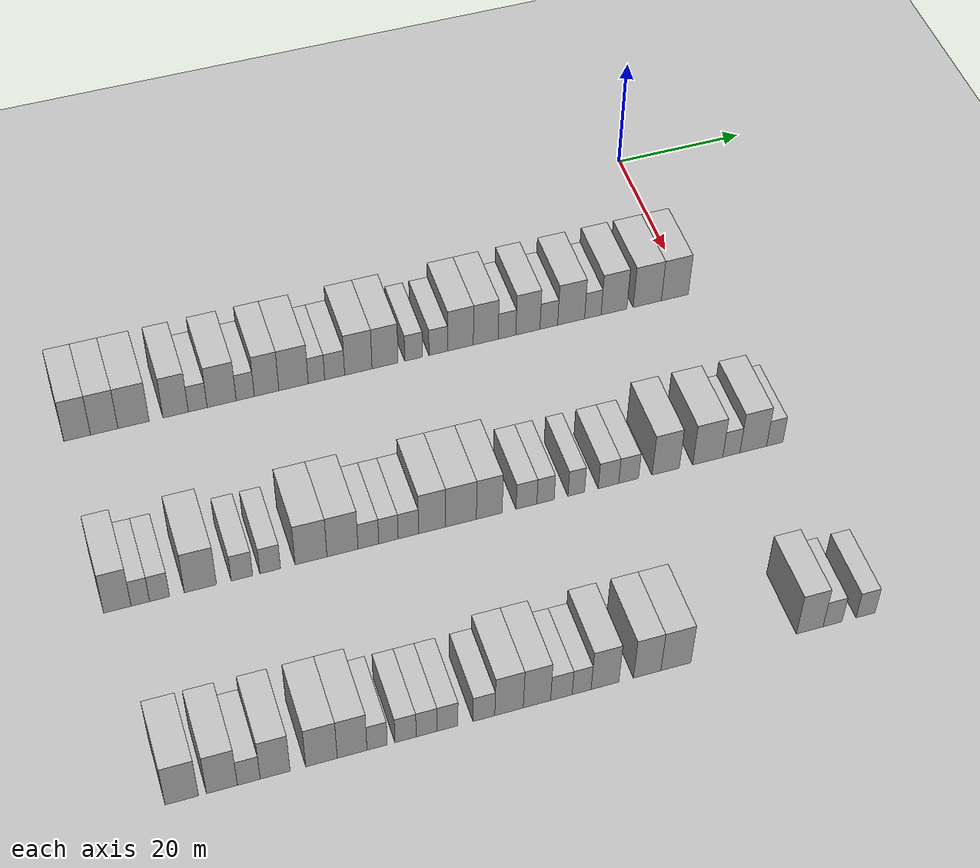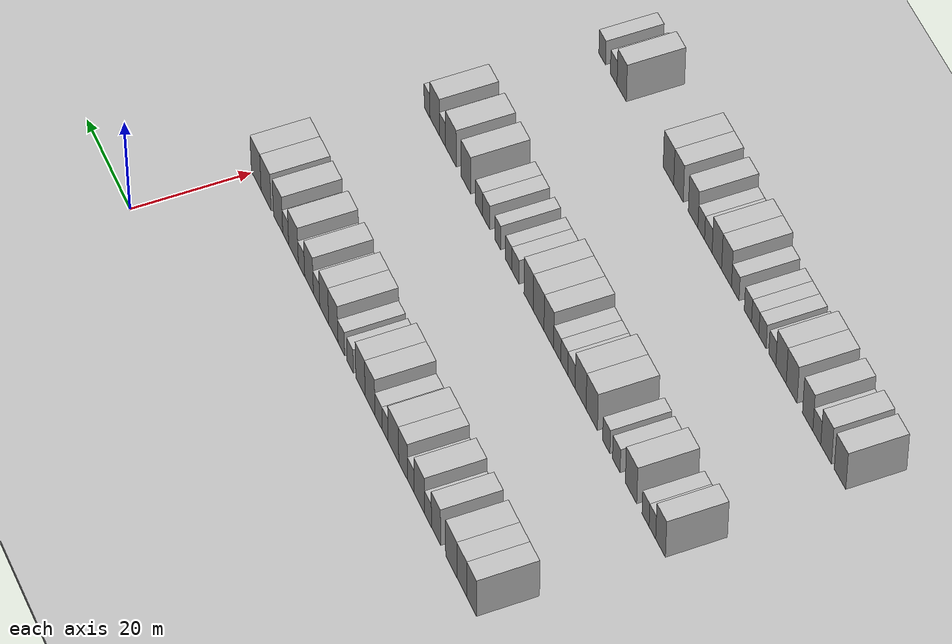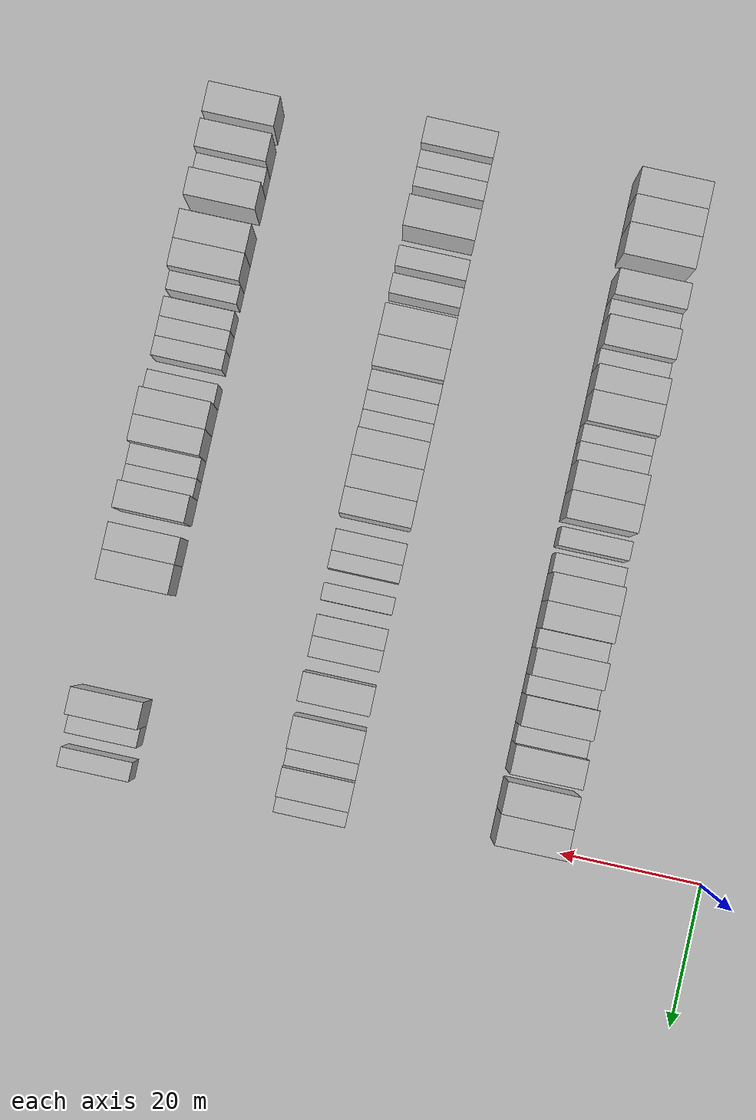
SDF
<sdf version="1.6">
 <world name="default">
  <include><name>ground_plane_1</name><uri>model://HANNAS_ground_plane</uri></include>
  <include>
   <name>ground_plane_2</name>
   <uri>model://HANNAS_ground_plane</uri>
   <pose>100 0 0  0 0 0</pose>
  </include>
  <model name="building_49">
   <static>1</static>
   <pose>25.0000 -92.1258 0 0.000000 0.000000 0.000000</pose>
   <link name="link">
    <pose>0 0 4.50 0 0 0</pose>
    <collision name="collision"><geometry><box><size>10.0000 3.7938 9.0000</size></box></geometry></collision>
    <visual name="visual">
     <cast_shadows>0</cast_shadows>
     <geometry><box><size>10.0000 3.7938 9.0000</size></box></geometry>
     <material>
      <script>
       <uri>model://HANNAS_wall/materials/scripts</uri>
       <uri>model://HANNAS_wall/materials/textures</uri>
       <name>vrc/HANNAS_wall</name>
      </script>
     </material>
    </visual>
   </link>
  </model>
  <model name="building_50">
   <static>1</static>
   <pose>25.0000 -88.2770 0 0.000000 0.000000 0.000000</pose>
   <link name="link">
    <pose>0 0 4.50 0 0 0</pose>
    <collision name="collision"><geometry><box><size>10.0000 3.9038 9.0000</size></box></geometry></collision>
    <visual name="visual">
     <cast_shadows>0</cast_shadows>
     <geometry><box><size>10.0000 3.9038 9.0000</size></box></geometry>
     <material>
      <script>
       <uri>model://HANNAS_wall/materials/scripts</uri>
       <uri>model://HANNAS_wall/materials/textures</uri>
       <name>vrc/HANNAS_wall</name>
      </script>
     </material>
    </visual>
   </link>
  </model>
  <model name="building_51">
   <static>1</static>
   <pose>25.0000 -84.0835 0 0.000000 0.000000 0.000000</pose>
   <link name="link">
    <pose>0 0 4.50 0 0 0</pose>
    <collision name="collision"><geometry><box><size>10.0000 4.4831 9.0000</size></box></geometry></collision>
    <visual name="visual">
     <cast_shadows>0</cast_shadows>
     <geometry><box><size>10.0000 4.4831 9.0000</size></box></geometry>
     <material>
      <script>
       <uri>model://HANNAS_wall/materials/scripts</uri>
       <uri>model://HANNAS_wall/materials/textures</uri>
       <name>vrc/HANNAS_wall</name>
      </script>
     </material>
    </visual>
   </link>
  </model>
  <model name="building_52">
   <static>1</static>
   <pose>25.0000 -78.0094 0 0.000000 0.000000 0.000000</pose>
   <link name="link">
    <pose>0 0 4.50 0 0 0</pose>
    <collision name="collision"><geometry><box><size>10.0000 3.6652 9.0000</size></box></geometry></collision>
    <visual name="visual">
     <cast_shadows>0</cast_shadows>
     <geometry><box><size>10.0000 3.6652 9.0000</size></box></geometry>
     <material>
      <script>
       <uri>model://HANNAS_wall/materials/scripts</uri>
       <uri>model://HANNAS_wall/materials/textures</uri>
       <name>vrc/HANNAS_wall</name>
      </script>
     </material>
    </visual>
   </link>
  </model>
  <model name="building_53">
   <static>1</static>
   <pose>25.0000 -74.8113 0 0.000000 0.000000 0.000000</pose>
   <link name="link">
    <pose>0 0 3.00 0 0 0</pose>
    <collision name="collision"><geometry><box><size>10.0000 2.7310 6.0000</size></box></geometry></collision>
    <visual name="visual">
     <cast_shadows>0</cast_shadows>
     <geometry><box><size>10.0000 2.7310 6.0000</size></box></geometry>
     <material>
      <script>
       <uri>model://HANNAS_wall/materials/scripts</uri>
       <uri>model://HANNAS_wall/materials/textures</uri>
       <name>vrc/HANNAS_wall</name>
      </script>
     </material>
    </visual>
   </link>
  </model>
  <model name="building_54">
   <static>1</static>
   <pose>25.0000 -71.3241 0 0.000000 0.000000 0.000000</pose>
   <link name="link">
    <pose>0 0 4.50 0 0 0</pose>
    <collision name="collision"><geometry><box><size>10.0000 4.2434 9.0000</size></box></geometry></collision>
    <visual name="visual">
     <cast_shadows>0</cast_shadows>
     <geometry><box><size>10.0000 4.2434 9.0000</size></box></geometry>
     <material>
      <script>
       <uri>model://HANNAS_wall/materials/scripts</uri>
       <uri>model://HANNAS_wall/materials/textures</uri>
       <name>vrc/HANNAS_wall</name>
      </script>
     </material>
    </visual>
   </link>
  </model>
  <model name="building_55">
   <static>1</static>
   <pose>25.0000 -67.8779 0 0.000000 0.000000 0.000000</pose>
   <link name="link">
    <pose>0 0 3.00 0 0 0</pose>
    <collision name="collision"><geometry><box><size>10.0000 2.6489 6.0000</size></box></geometry></collision>
    <visual name="visual">
     <cast_shadows>0</cast_shadows>
     <geometry><box><size>10.0000 2.6489 6.0000</size></box></geometry>
     <material>
      <script>
       <uri>model://HANNAS_wall/materials/scripts</uri>
       <uri>model://HANNAS_wall/materials/textures</uri>
       <name>vrc/HANNAS_wall</name>
      </script>
     </material>
    </visual>
   </link>
  </model>
  <model name="building_56">
   <static>1</static>
   <pose>25.0000 -64.7473 0 0.000000 0.000000 0.000000</pose>
   <link name="link">
    <pose>0 0 4.50 0 0 0</pose>
    <collision name="collision"><geometry><box><size>10.0000 3.6124 9.0000</size></box></geometry></collision>
    <visual name="visual">
     <cast_shadows>0</cast_shadows>
     <geometry><box><size>10.0000 3.6124 9.0000</size></box></geometry>
     <material>
      <script>
       <uri>model://HANNAS_wall/materials/scripts</uri>
       <uri>model://HANNAS_wall/materials/textures</uri>
       <name>vrc/HANNAS_wall</name>
      </script>
     </material>
    </visual>
   </link>
  </model>
  <model name="building_57">
   <static>1</static>
   <pose>25.0000 -60.7723 0 0.000000 0.000000 0.000000</pose>
   <link name="link">
    <pose>0 0 4.50 0 0 0</pose>
    <collision name="collision"><geometry><box><size>10.0000 4.3376 9.0000</size></box></geometry></collision>
    <visual name="visual">
     <cast_shadows>0</cast_shadows>
     <geometry><box><size>10.0000 4.3376 9.0000</size></box></geometry>
     <material>
      <script>
       <uri>model://HANNAS_wall/materials/scripts</uri>
       <uri>model://HANNAS_wall/materials/textures</uri>
       <name>vrc/HANNAS_wall</name>
      </script>
     </material>
    </visual>
   </link>
  </model>
  <model name="building_58">
   <static>1</static>
   <pose>25.0000 -57.3871 0 0.000000 0.000000 0.000000</pose>
   <link name="link">
    <pose>0 0 3.00 0 0 0</pose>
    <collision name="collision"><geometry><box><size>10.0000 2.4330 6.0000</size></box></geometry></collision>
    <visual name="visual">
     <cast_shadows>0</cast_shadows>
     <geometry><box><size>10.0000 2.4330 6.0000</size></box></geometry>
     <material>
      <script>
       <uri>model://HANNAS_wall/materials/scripts</uri>
       <uri>model://HANNAS_wall/materials/textures</uri>
       <name>vrc/HANNAS_wall</name>
      </script>
     </material>
    </visual>
   </link>
  </model>
  <model name="building_59">
   <static>1</static>
   <pose>25.0000 -54.6820 0 0.000000 0.000000 0.000000</pose>
   <link name="link">
    <pose>0 0 3.00 0 0 0</pose>
    <collision name="collision"><geometry><box><size>10.0000 2.9771 6.0000</size></box></geometry></collision>
    <visual name="visual">
     <cast_shadows>0</cast_shadows>
     <geometry><box><size>10.0000 2.9771 6.0000</size></box></geometry>
     <material>
      <script>
       <uri>model://HANNAS_wall/materials/scripts</uri>
       <uri>model://HANNAS_wall/materials/textures</uri>
       <name>vrc/HANNAS_wall</name>
      </script>
     </material>
    </visual>
   </link>
  </model>
  <model name="building_60">
   <static>1</static>
   <pose>25.0000 -51.1401 0 0.000000 0.000000 0.000000</pose>
   <link name="link">
    <pose>0 0 4.50 0 0 0</pose>
    <collision name="collision"><geometry><box><size>10.0000 4.1068 9.0000</size></box></geometry></collision>
    <visual name="visual">
     <cast_shadows>0</cast_shadows>
     <geometry><box><size>10.0000 4.1068 9.0000</size></box></geometry>
     <material>
      <script>
       <uri>model://HANNAS_wall/materials/scripts</uri>
       <uri>model://HANNAS_wall/materials/textures</uri>
       <name>vrc/HANNAS_wall</name>
      </script>
     </material>
    </visual>
   </link>
  </model>
  <model name="building_61">
   <static>1</static>
   <pose>25.0000 -47.1338 0 0.000000 0.000000 0.000000</pose>
   <link name="link">
    <pose>0 0 4.50 0 0 0</pose>
    <collision name="collision"><geometry><box><size>10.0000 3.9057 9.0000</size></box></geometry></collision>
    <visual name="visual">
     <cast_shadows>0</cast_shadows>
     <geometry><box><size>10.0000 3.9057 9.0000</size></box></geometry>
     <material>
      <script>
       <uri>model://HANNAS_wall/materials/scripts</uri>
       <uri>model://HANNAS_wall/materials/textures</uri>
       <name>vrc/HANNAS_wall</name>
      </script>
     </material>
    </visual>
   </link>
  </model>
  <model name="building_62">
   <static>1</static>
   <pose>25.0000 -42.8473 0 0.000000 0.000000 0.000000</pose>
   <link name="link">
    <pose>0 0 3.00 0 0 0</pose>
    <collision name="collision"><geometry><box><size>10.0000 2.6674 6.0000</size></box></geometry></collision>
    <visual name="visual">
     <cast_shadows>0</cast_shadows>
     <geometry><box><size>10.0000 2.6674 6.0000</size></box></geometry>
     <material>
      <script>
       <uri>model://HANNAS_wall/materials/scripts</uri>
       <uri>model://HANNAS_wall/materials/textures</uri>
       <name>vrc/HANNAS_wall</name>
      </script>
     </material>
    </visual>
   </link>
  </model>
  <model name="building_63">
   <static>1</static>
   <pose>25.0000 -39.1117 0 0.000000 0.000000 0.000000</pose>
   <link name="link">
    <pose>0 0 3.00 0 0 0</pose>
    <collision name="collision"><geometry><box><size>10.0000 2.8037 6.0000</size></box></geometry></collision>
    <visual name="visual">
     <cast_shadows>0</cast_shadows>
     <geometry><box><size>10.0000 2.8037 6.0000</size></box></geometry>
     <material>
      <script>
       <uri>model://HANNAS_wall/materials/scripts</uri>
       <uri>model://HANNAS_wall/materials/textures</uri>
       <name>vrc/HANNAS_wall</name>
      </script>
     </material>
    </visual>
   </link>
  </model>
  <model name="building_64">
   <static>1</static>
   <pose>25.0000 -35.7398 0 0.000000 0.000000 0.000000</pose>
   <link name="link">
    <pose>0 0 4.50 0 0 0</pose>
    <collision name="collision"><geometry><box><size>10.0000 3.9401 9.0000</size></box></geometry></collision>
    <visual name="visual">
     <cast_shadows>0</cast_shadows>
     <geometry><box><size>10.0000 3.9401 9.0000</size></box></geometry>
     <material>
      <script>
       <uri>model://HANNAS_wall/materials/scripts</uri>
       <uri>model://HANNAS_wall/materials/textures</uri>
       <name>vrc/HANNAS_wall</name>
      </script>
     </material>
    </visual>
   </link>
  </model>
  <model name="building_65">
   <static>1</static>
   <pose>25.0000 -31.8681 0 0.000000 0.000000 0.000000</pose>
   <link name="link">
    <pose>0 0 4.50 0 0 0</pose>
    <collision name="collision"><geometry><box><size>10.0000 3.8032 9.0000</size></box></geometry></collision>
    <visual name="visual">
     <cast_shadows>0</cast_shadows>
     <geometry><box><size>10.0000 3.8032 9.0000</size></box></geometry>
     <material>
      <script>
       <uri>model://HANNAS_wall/materials/scripts</uri>
       <uri>model://HANNAS_wall/materials/textures</uri>
       <name>vrc/HANNAS_wall</name>
      </script>
     </material>
    </visual>
   </link>
  </model>
  <model name="building_66">
   <static>1</static>
   <pose>25.0000 -28.6128 0 0.000000 0.000000 0.000000</pose>
   <link name="link">
    <pose>0 0 3.00 0 0 0</pose>
    <collision name="collision"><geometry><box><size>10.0000 2.7074 6.0000</size></box></geometry></collision>
    <visual name="visual">
     <cast_shadows>0</cast_shadows>
     <geometry><box><size>10.0000 2.7074 6.0000</size></box></geometry>
     <material>
      <script>
       <uri>model://HANNAS_wall/materials/scripts</uri>
       <uri>model://HANNAS_wall/materials/textures</uri>
       <name>vrc/HANNAS_wall</name>
      </script>
     </material>
    </visual>
   </link>
  </model>
  <model name="building_67">
   <static>1</static>
   <pose>25.0000 -25.3885 0 0.000000 0.000000 0.000000</pose>
   <link name="link">
    <pose>0 0 4.50 0 0 0</pose>
    <collision name="collision"><geometry><box><size>10.0000 3.7412 9.0000</size></box></geometry></collision>
    <visual name="visual">
     <cast_shadows>0</cast_shadows>
     <geometry><box><size>10.0000 3.7412 9.0000</size></box></geometry>
     <material>
      <script>
       <uri>model://HANNAS_wall/materials/scripts</uri>
       <uri>model://HANNAS_wall/materials/textures</uri>
       <name>vrc/HANNAS_wall</name>
      </script>
     </material>
    </visual>
   </link>
  </model>
  <model name="building_68">
   <static>1</static>
   <pose>25.0000 -22.1528 0 0.000000 0.000000 0.000000</pose>
   <link name="link">
    <pose>0 0 3.00 0 0 0</pose>
    <collision name="collision"><geometry><box><size>10.0000 2.7304 6.0000</size></box></geometry></collision>
    <visual name="visual">
     <cast_shadows>0</cast_shadows>
     <geometry><box><size>10.0000 2.7304 6.0000</size></box></geometry>
     <material>
      <script>
       <uri>model://HANNAS_wall/materials/scripts</uri>
       <uri>model://HANNAS_wall/materials/textures</uri>
       <name>vrc/HANNAS_wall</name>
      </script>
     </material>
    </visual>
   </link>
  </model>
  <model name="building_69">
   <static>1</static>
   <pose>25.0000 -18.6870 0 0.000000 0.000000 0.000000</pose>
   <link name="link">
    <pose>0 0 4.50 0 0 0</pose>
    <collision name="collision"><geometry><box><size>10.0000 4.2011 9.0000</size></box></geometry></collision>
    <visual name="visual">
     <cast_shadows>0</cast_shadows>
     <geometry><box><size>10.0000 4.2011 9.0000</size></box></geometry>
     <material>
      <script>
       <uri>model://HANNAS_wall/materials/scripts</uri>
       <uri>model://HANNAS_wall/materials/textures</uri>
       <name>vrc/HANNAS_wall</name>
      </script>
     </material>
    </visual>
   </link>
  </model>
  <model name="building_70">
   <static>1</static>
   <pose>25.0000 -15.2967 0 0.000000 0.000000 0.000000</pose>
   <link name="link">
    <pose>0 0 3.00 0 0 0</pose>
    <collision name="collision"><geometry><box><size>10.0000 2.5794 6.0000</size></box></geometry></collision>
    <visual name="visual">
     <cast_shadows>0</cast_shadows>
     <geometry><box><size>10.0000 2.5794 6.0000</size></box></geometry>
     <material>
      <script>
       <uri>model://HANNAS_wall/materials/scripts</uri>
       <uri>model://HANNAS_wall/materials/textures</uri>
       <name>vrc/HANNAS_wall</name>
      </script>
     </material>
    </visual>
   </link>
  </model>
  <model name="building_71">
   <static>1</static>
   <pose>25.0000 -11.9803 0 0.000000 0.000000 0.000000</pose>
   <link name="link">
    <pose>0 0 4.50 0 0 0</pose>
    <collision name="collision"><geometry><box><size>10.0000 4.0534 9.0000</size></box></geometry></collision>
    <visual name="visual">
     <cast_shadows>0</cast_shadows>
     <geometry><box><size>10.0000 4.0534 9.0000</size></box></geometry>
     <material>
      <script>
       <uri>model://HANNAS_wall/materials/scripts</uri>
       <uri>model://HANNAS_wall/materials/textures</uri>
       <name>vrc/HANNAS_wall</name>
      </script>
     </material>
    </visual>
   </link>
  </model>
  <model name="building_72">
   <static>1</static>
   <pose>25.0000 -6.7325 0 0.000000 0.000000 0.000000</pose>
   <link name="link">
    <pose>0 0 4.50 0 0 0</pose>
    <collision name="collision"><geometry><box><size>10.0000 4.4423 9.0000</size></box></geometry></collision>
    <visual name="visual">
     <cast_shadows>0</cast_shadows>
     <geometry><box><size>10.0000 4.4423 9.0000</size></box></geometry>
     <material>
      <script>
       <uri>model://HANNAS_wall/materials/scripts</uri>
       <uri>model://HANNAS_wall/materials/textures</uri>
       <name>vrc/HANNAS_wall</name>
      </script>
     </material>
    </visual>
   </link>
  </model>
  <model name="building_73">
   <static>1</static>
   <pose>25.0000 -2.3763 0 0.000000 0.000000 0.000000</pose>
   <link name="link">
    <pose>0 0 4.50 0 0 0</pose>
    <collision name="collision"><geometry><box><size>10.0000 4.2701 9.0000</size></box></geometry></collision>
    <visual name="visual">
     <cast_shadows>0</cast_shadows>
     <geometry><box><size>10.0000 4.2701 9.0000</size></box></geometry>
     <material>
      <script>
       <uri>model://HANNAS_wall/materials/scripts</uri>
       <uri>model://HANNAS_wall/materials/textures</uri>
       <name>vrc/HANNAS_wall</name>
      </script>
     </material>
    </visual>
   </link>
  </model>
  <model name="building_189">
   <static>1</static>
   <pose>55.0000 -92.5346 0 0.000000 0.000000 0.000000</pose>
   <link name="link">
    <pose>0 0 4.50 0 0 0</pose>
    <collision name="collision"><geometry><box><size>10.0000 3.6775 9.0000</size></box></geometry></collision>
    <visual name="visual">
     <cast_shadows>0</cast_shadows>
     <geometry><box><size>10.0000 3.6775 9.0000</size></box></geometry>
     <material>
      <script>
       <uri>model://HANNAS_wall/materials/scripts</uri>
       <uri>model://HANNAS_wall/materials/textures</uri>
       <name>vrc/HANNAS_wall</name>
      </script>
     </material>
    </visual>
   </link>
  </model>
  <model name="building_190">
   <static>1</static>
   <pose>55.0000 -89.4547 0 0.000000 0.000000 0.000000</pose>
   <link name="link">
    <pose>0 0 3.00 0 0 0</pose>
    <collision name="collision"><geometry><box><size>10.0000 2.4825 6.0000</size></box></geometry></collision>
    <visual name="visual">
     <cast_shadows>0</cast_shadows>
     <geometry><box><size>10.0000 2.4825 6.0000</size></box></geometry>
     <material>
      <script>
       <uri>model://HANNAS_wall/materials/scripts</uri>
       <uri>model://HANNAS_wall/materials/textures</uri>
       <name>vrc/HANNAS_wall</name>
      </script>
     </material>
    </visual>
   </link>
  </model>
  <model name="building_191">
   <static>1</static>
   <pose>55.0000 -86.8682 0 0.000000 0.000000 0.000000</pose>
   <link name="link">
    <pose>0 0 3.00 0 0 0</pose>
    <collision name="collision"><geometry><box><size>10.0000 2.6904 6.0000</size></box></geometry></collision>
    <visual name="visual">
     <cast_shadows>0</cast_shadows>
     <geometry><box><size>10.0000 2.6904 6.0000</size></box></geometry>
     <material>
      <script>
       <uri>model://HANNAS_wall/materials/scripts</uri>
       <uri>model://HANNAS_wall/materials/textures</uri>
       <name>vrc/HANNAS_wall</name>
      </script>
     </material>
    </visual>
   </link>
  </model>
  <model name="building_192">
   <static>1</static>
   <pose>55.0000 -81.3403 0 0.000000 0.000000 0.000000</pose>
   <link name="link">
    <pose>0 0 4.50 0 0 0</pose>
    <collision name="collision"><geometry><box><size>10.0000 4.3654 9.0000</size></box></geometry></collision>
    <visual name="visual">
     <cast_shadows>0</cast_shadows>
     <geometry><box><size>10.0000 4.3654 9.0000</size></box></geometry>
     <material>
      <script>
       <uri>model://HANNAS_wall/materials/scripts</uri>
       <uri>model://HANNAS_wall/materials/textures</uri>
       <name>vrc/HANNAS_wall</name>
      </script>
     </material>
    </visual>
   </link>
  </model>
  <model name="building_193">
   <static>1</static>
   <pose>55.0000 -75.6890 0 0.000000 0.000000 0.000000</pose>
   <link name="link">
    <pose>0 0 3.00 0 0 0</pose>
    <collision name="collision"><geometry><box><size>10.0000 2.9372 6.0000</size></box></geometry></collision>
    <visual name="visual">
     <cast_shadows>0</cast_shadows>
     <geometry><box><size>10.0000 2.9372 6.0000</size></box></geometry>
     <material>
      <script>
       <uri>model://HANNAS_wall/materials/scripts</uri>
       <uri>model://HANNAS_wall/materials/textures</uri>
       <name>vrc/HANNAS_wall</name>
      </script>
     </material>
    </visual>
   </link>
  </model>
  <model name="building_194">
   <static>1</static>
   <pose>55.0000 -71.8022 0 0.000000 0.000000 0.000000</pose>
   <link name="link">
    <pose>0 0 3.00 0 0 0</pose>
    <collision name="collision"><geometry><box><size>10.0000 2.8365 6.0000</size></box></geometry></collision>
    <visual name="visual">
     <cast_shadows>0</cast_shadows>
     <geometry><box><size>10.0000 2.8365 6.0000</size></box></geometry>
     <material>
      <script>
       <uri>model://HANNAS_wall/materials/scripts</uri>
       <uri>model://HANNAS_wall/materials/textures</uri>
       <name>vrc/HANNAS_wall</name>
      </script>
     </material>
    </visual>
   </link>
  </model>
  <model name="building_195">
   <static>1</static>
   <pose>55.0000 -66.1726 0 0.000000 0.000000 0.000000</pose>
   <link name="link">
    <pose>0 0 4.50 0 0 0</pose>
    <collision name="collision"><geometry><box><size>10.0000 4.4228 9.0000</size></box></geometry></collision>
    <visual name="visual">
     <cast_shadows>0</cast_shadows>
     <geometry><box><size>10.0000 4.4228 9.0000</size></box></geometry>
     <material>
      <script>
       <uri>model://HANNAS_wall/materials/scripts</uri>
       <uri>model://HANNAS_wall/materials/textures</uri>
       <name>vrc/HANNAS_wall</name>
      </script>
     </material>
    </visual>
   </link>
  </model>
  <model name="building_196">
   <static>1</static>
   <pose>55.0000 -61.7965 0 0.000000 0.000000 0.000000</pose>
   <link name="link">
    <pose>0 0 4.50 0 0 0</pose>
    <collision name="collision"><geometry><box><size>10.0000 4.3293 9.0000</size></box></geometry></collision>
    <visual name="visual">
     <cast_shadows>0</cast_shadows>
     <geometry><box><size>10.0000 4.3293 9.0000</size></box></geometry>
     <material>
      <script>
       <uri>model://HANNAS_wall/materials/scripts</uri>
       <uri>model://HANNAS_wall/materials/textures</uri>
       <name>vrc/HANNAS_wall</name>
      </script>
     </material>
    </visual>
   </link>
  </model>
  <model name="building_197">
   <static>1</static>
   <pose>55.0000 -58.1788 0 0.000000 0.000000 0.000000</pose>
   <link name="link">
    <pose>0 0 3.00 0 0 0</pose>
    <collision name="collision"><geometry><box><size>10.0000 2.9062 6.0000</size></box></geometry></collision>
    <visual name="visual">
     <cast_shadows>0</cast_shadows>
     <geometry><box><size>10.0000 2.9062 6.0000</size></box></geometry>
     <material>
      <script>
       <uri>model://HANNAS_wall/materials/scripts</uri>
       <uri>model://HANNAS_wall/materials/textures</uri>
       <name>vrc/HANNAS_wall</name>
      </script>
     </material>
    </visual>
   </link>
  </model>
  <model name="building_198">
   <static>1</static>
   <pose>55.0000 -55.3658 0 0.000000 0.000000 0.000000</pose>
   <link name="link">
    <pose>0 0 3.00 0 0 0</pose>
    <collision name="collision"><geometry><box><size>10.0000 2.7199 6.0000</size></box></geometry></collision>
    <visual name="visual">
     <cast_shadows>0</cast_shadows>
     <geometry><box><size>10.0000 2.7199 6.0000</size></box></geometry>
     <material>
      <script>
       <uri>model://HANNAS_wall/materials/scripts</uri>
       <uri>model://HANNAS_wall/materials/textures</uri>
       <name>vrc/HANNAS_wall</name>
      </script>
     </material>
    </visual>
   </link>
  </model>
  <model name="building_199">
   <static>1</static>
   <pose>55.0000 -52.5724 0 0.000000 0.000000 0.000000</pose>
   <link name="link">
    <pose>0 0 3.00 0 0 0</pose>
    <collision name="collision"><geometry><box><size>10.0000 2.8668 6.0000</size></box></geometry></collision>
    <visual name="visual">
     <cast_shadows>0</cast_shadows>
     <geometry><box><size>10.0000 2.8668 6.0000</size></box></geometry>
     <material>
      <script>
       <uri>model://HANNAS_wall/materials/scripts</uri>
       <uri>model://HANNAS_wall/materials/textures</uri>
       <name>vrc/HANNAS_wall</name>
      </script>
     </material>
    </visual>
   </link>
  </model>
  <model name="building_200">
   <static>1</static>
   <pose>55.0000 -49.2197 0 0.000000 0.000000 0.000000</pose>
   <link name="link">
    <pose>0 0 4.50 0 0 0</pose>
    <collision name="collision"><geometry><box><size>10.0000 3.8386 9.0000</size></box></geometry></collision>
    <visual name="visual">
     <cast_shadows>0</cast_shadows>
     <geometry><box><size>10.0000 3.8386 9.0000</size></box></geometry>
     <material>
      <script>
       <uri>model://HANNAS_wall/materials/scripts</uri>
       <uri>model://HANNAS_wall/materials/textures</uri>
       <name>vrc/HANNAS_wall</name>
      </script>
     </material>
    </visual>
   </link>
  </model>
  <model name="building_201">
   <static>1</static>
   <pose>55.0000 -45.1096 0 0.000000 0.000000 0.000000</pose>
   <link name="link">
    <pose>0 0 4.50 0 0 0</pose>
    <collision name="collision"><geometry><box><size>10.0000 4.3817 9.0000</size></box></geometry></collision>
    <visual name="visual">
     <cast_shadows>0</cast_shadows>
     <geometry><box><size>10.0000 4.3817 9.0000</size></box></geometry>
     <material>
      <script>
       <uri>model://HANNAS_wall/materials/scripts</uri>
       <uri>model://HANNAS_wall/materials/textures</uri>
       <name>vrc/HANNAS_wall</name>
      </script>
     </material>
    </visual>
   </link>
  </model>
  <model name="building_202">
   <static>1</static>
   <pose>55.0000 -41.0719 0 0.000000 0.000000 0.000000</pose>
   <link name="link">
    <pose>0 0 4.50 0 0 0</pose>
    <collision name="collision"><geometry><box><size>10.0000 3.6938 9.0000</size></box></geometry></collision>
    <visual name="visual">
     <cast_shadows>0</cast_shadows>
     <geometry><box><size>10.0000 3.6938 9.0000</size></box></geometry>
     <material>
      <script>
       <uri>model://HANNAS_wall/materials/scripts</uri>
       <uri>model://HANNAS_wall/materials/textures</uri>
       <name>vrc/HANNAS_wall</name>
      </script>
     </material>
    </visual>
   </link>
  </model>
  <model name="building_203">
   <static>1</static>
   <pose>55.0000 -35.7282 0 0.000000 0.000000 0.000000</pose>
   <link name="link">
    <pose>0 0 3.00 0 0 0</pose>
    <collision name="collision"><geometry><box><size>10.0000 2.9936 6.0000</size></box></geometry></collision>
    <visual name="visual">
     <cast_shadows>0</cast_shadows>
     <geometry><box><size>10.0000 2.9936 6.0000</size></box></geometry>
     <material>
      <script>
       <uri>model://HANNAS_wall/materials/scripts</uri>
       <uri>model://HANNAS_wall/materials/textures</uri>
       <name>vrc/HANNAS_wall</name>
      </script>
     </material>
    </visual>
   </link>
  </model>
  <model name="building_204">
   <static>1</static>
   <pose>55.0000 -32.9749 0 0.000000 0.000000 0.000000</pose>
   <link name="link">
    <pose>0 0 3.00 0 0 0</pose>
    <collision name="collision"><geometry><box><size>10.0000 2.5130 6.0000</size></box></geometry></collision>
    <visual name="visual">
     <cast_shadows>0</cast_shadows>
     <geometry><box><size>10.0000 2.5130 6.0000</size></box></geometry>
     <material>
      <script>
       <uri>model://HANNAS_wall/materials/scripts</uri>
       <uri>model://HANNAS_wall/materials/textures</uri>
       <name>vrc/HANNAS_wall</name>
      </script>
     </material>
    </visual>
   </link>
  </model>
  <model name="building_205">
   <static>1</static>
   <pose>55.0000 -28.5077 0 0.000000 0.000000 0.000000</pose>
   <link name="link">
    <pose>0 0 3.00 0 0 0</pose>
    <collision name="collision"><geometry><box><size>10.0000 2.4214 6.0000</size></box></geometry></collision>
    <visual name="visual">
     <cast_shadows>0</cast_shadows>
     <geometry><box><size>10.0000 2.4214 6.0000</size></box></geometry>
     <material>
      <script>
       <uri>model://HANNAS_wall/materials/scripts</uri>
       <uri>model://HANNAS_wall/materials/textures</uri>
       <name>vrc/HANNAS_wall</name>
      </script>
     </material>
    </visual>
   </link>
  </model>
  <model name="building_206">
   <static>1</static>
   <pose>55.0000 -23.7990 0 0.000000 0.000000 0.000000</pose>
   <link name="link">
    <pose>0 0 3.00 0 0 0</pose>
    <collision name="collision"><geometry><box><size>10.0000 2.9960 6.0000</size></box></geometry></collision>
    <visual name="visual">
     <cast_shadows>0</cast_shadows>
     <geometry><box><size>10.0000 2.9960 6.0000</size></box></geometry>
     <material>
      <script>
       <uri>model://HANNAS_wall/materials/scripts</uri>
       <uri>model://HANNAS_wall/materials/textures</uri>
       <name>vrc/HANNAS_wall</name>
      </script>
     </material>
    </visual>
   </link>
  </model>
  <model name="building_207">
   <static>1</static>
   <pose>55.0000 -20.8424 0 0.000000 0.000000 0.000000</pose>
   <link name="link">
    <pose>0 0 3.00 0 0 0</pose>
    <collision name="collision"><geometry><box><size>10.0000 2.9172 6.0000</size></box></geometry></collision>
    <visual name="visual">
     <cast_shadows>0</cast_shadows>
     <geometry><box><size>10.0000 2.9172 6.0000</size></box></geometry>
     <material>
      <script>
       <uri>model://HANNAS_wall/materials/scripts</uri>
       <uri>model://HANNAS_wall/materials/textures</uri>
       <name>vrc/HANNAS_wall</name>
      </script>
     </material>
    </visual>
   </link>
  </model>
  <model name="building_208">
   <static>1</static>
   <pose>55.0000 -15.3687 0 0.000000 0.000000 0.000000</pose>
   <link name="link">
    <pose>0 0 4.50 0 0 0</pose>
    <collision name="collision"><geometry><box><size>10.0000 4.0302 9.0000</size></box></geometry></collision>
    <visual name="visual">
     <cast_shadows>0</cast_shadows>
     <geometry><box><size>10.0000 4.0302 9.0000</size></box></geometry>
     <material>
      <script>
       <uri>model://HANNAS_wall/materials/scripts</uri>
       <uri>model://HANNAS_wall/materials/textures</uri>
       <name>vrc/HANNAS_wall</name>
      </script>
     </material>
    </visual>
   </link>
  </model>
  <model name="building_209">
   <static>1</static>
   <pose>55.0000 -9.1114 0 0.000000 0.000000 0.000000</pose>
   <link name="link">
    <pose>0 0 4.50 0 0 0</pose>
    <collision name="collision"><geometry><box><size>10.0000 4.4844 9.0000</size></box></geometry></collision>
    <visual name="visual">
     <cast_shadows>0</cast_shadows>
     <geometry><box><size>10.0000 4.4844 9.0000</size></box></geometry>
     <material>
      <script>
       <uri>model://HANNAS_wall/materials/scripts</uri>
       <uri>model://HANNAS_wall/materials/textures</uri>
       <name>vrc/HANNAS_wall</name>
      </script>
     </material>
    </visual>
   </link>
  </model>
  <model name="building_210">
   <static>1</static>
   <pose>55.0000 -5.5885 0 0.000000 0.000000 0.000000</pose>
   <link name="link">
    <pose>0 0 3.00 0 0 0</pose>
    <collision name="collision"><geometry><box><size>10.0000 2.5615 6.0000</size></box></geometry></collision>
    <visual name="visual">
     <cast_shadows>0</cast_shadows>
     <geometry><box><size>10.0000 2.5615 6.0000</size></box></geometry>
     <material>
      <script>
       <uri>model://HANNAS_wall/materials/scripts</uri>
       <uri>model://HANNAS_wall/materials/textures</uri>
       <name>vrc/HANNAS_wall</name>
      </script>
     </material>
    </visual>
   </link>
  </model>
  <model name="building_211">
   <static>1</static>
   <pose>55.0000 -2.2883 0 0.000000 0.000000 0.000000</pose>
   <link name="link">
    <pose>0 0 4.50 0 0 0</pose>
    <collision name="collision"><geometry><box><size>10.0000 4.0388 9.0000</size></box></geometry></collision>
    <visual name="visual">
     <cast_shadows>0</cast_shadows>
     <geometry><box><size>10.0000 4.0388 9.0000</size></box></geometry>
     <material>
      <script>
       <uri>model://HANNAS_wall/materials/scripts</uri>
       <uri>model://HANNAS_wall/materials/textures</uri>
       <name>vrc/HANNAS_wall</name>
      </script>
     </material>
    </visual>
   </link>
  </model>
  <model name="building_212">
   <static>1</static>
   <pose>55.0000 0.9591 0 0.000000 0.000000 0.000000</pose>
   <link name="link">
    <pose>0 0 3.00 0 0 0</pose>
    <collision name="collision"><geometry><box><size>10.0000 2.4561 6.0000</size></box></geometry></collision>
    <visual name="visual">
     <cast_shadows>0</cast_shadows>
     <geometry><box><size>10.0000 2.4561 6.0000</size></box></geometry>
     <material>
      <script>
       <uri>model://HANNAS_wall/materials/scripts</uri>
       <uri>model://HANNAS_wall/materials/textures</uri>
       <name>vrc/HANNAS_wall</name>
      </script>
     </material>
    </visual>
   </link>
  </model>
  <model name="building_328">
   <static>1</static>
   <pose>85.0000 -90.6147 0 0.000000 0.000000 0.000000</pose>
   <link name="link">
    <pose>0 0 4.50 0 0 0</pose>
    <collision name="collision"><geometry><box><size>10.0000 4.2171 9.0000</size></box></geometry></collision>
    <visual name="visual">
     <cast_shadows>0</cast_shadows>
     <geometry><box><size>10.0000 4.2171 9.0000</size></box></geometry>
     <material>
      <script>
       <uri>model://HANNAS_wall/materials/scripts</uri>
       <uri>model://HANNAS_wall/materials/textures</uri>
       <name>vrc/HANNAS_wall</name>
      </script>
     </material>
    </visual>
   </link>
  </model>
  <model name="building_329">
   <static>1</static>
   <pose>85.0000 -85.5405 0 0.000000 0.000000 0.000000</pose>
   <link name="link">
    <pose>0 0 4.50 0 0 0</pose>
    <collision name="collision"><geometry><box><size>10.0000 3.9313 9.0000</size></box></geometry></collision>
    <visual name="visual">
     <cast_shadows>0</cast_shadows>
     <geometry><box><size>10.0000 3.9313 9.0000</size></box></geometry>
     <material>
      <script>
       <uri>model://HANNAS_wall/materials/scripts</uri>
       <uri>model://HANNAS_wall/materials/textures</uri>
       <name>vrc/HANNAS_wall</name>
      </script>
     </material>
    </visual>
   </link>
  </model>
  <model name="building_330">
   <static>1</static>
   <pose>85.0000 -82.1210 0 0.000000 0.000000 0.000000</pose>
   <link name="link">
    <pose>0 0 3.00 0 0 0</pose>
    <collision name="collision"><geometry><box><size>10.0000 2.9078 6.0000</size></box></geometry></collision>
    <visual name="visual">
     <cast_shadows>0</cast_shadows>
     <geometry><box><size>10.0000 2.9078 6.0000</size></box></geometry>
     <material>
      <script>
       <uri>model://HANNAS_wall/materials/scripts</uri>
       <uri>model://HANNAS_wall/materials/textures</uri>
       <name>vrc/HANNAS_wall</name>
      </script>
     </material>
    </visual>
   </link>
  </model>
  <model name="building_331">
   <static>1</static>
   <pose>85.0000 -78.7555 0 0.000000 0.000000 0.000000</pose>
   <link name="link">
    <pose>0 0 4.50 0 0 0</pose>
    <collision name="collision"><geometry><box><size>10.0000 3.8231 9.0000</size></box></geometry></collision>
    <visual name="visual">
     <cast_shadows>0</cast_shadows>
     <geometry><box><size>10.0000 3.8231 9.0000</size></box></geometry>
     <material>
      <script>
       <uri>model://HANNAS_wall/materials/scripts</uri>
       <uri>model://HANNAS_wall/materials/textures</uri>
       <name>vrc/HANNAS_wall</name>
      </script>
     </material>
    </visual>
   </link>
  </model>
  <model name="building_332">
   <static>1</static>
   <pose>85.0000 -72.8084 0 0.000000 0.000000 0.000000</pose>
   <link name="link">
    <pose>0 0 4.50 0 0 0</pose>
    <collision name="collision"><geometry><box><size>10.0000 4.0711 9.0000</size></box></geometry></collision>
    <visual name="visual">
     <cast_shadows>0</cast_shadows>
     <geometry><box><size>10.0000 4.0711 9.0000</size></box></geometry>
     <material>
      <script>
       <uri>model://HANNAS_wall/materials/scripts</uri>
       <uri>model://HANNAS_wall/materials/textures</uri>
       <name>vrc/HANNAS_wall</name>
      </script>
     </material>
    </visual>
   </link>
  </model>
  <model name="building_333">
   <static>1</static>
   <pose>85.0000 -68.8379 0 0.000000 0.000000 0.000000</pose>
   <link name="link">
    <pose>0 0 4.50 0 0 0</pose>
    <collision name="collision"><geometry><box><size>10.0000 3.8699 9.0000</size></box></geometry></collision>
    <visual name="visual">
     <cast_shadows>0</cast_shadows>
     <geometry><box><size>10.0000 3.8699 9.0000</size></box></geometry>
     <material>
      <script>
       <uri>model://HANNAS_wall/materials/scripts</uri>
       <uri>model://HANNAS_wall/materials/textures</uri>
       <name>vrc/HANNAS_wall</name>
      </script>
     </material>
    </visual>
   </link>
  </model>
  <model name="building_334">
   <static>1</static>
   <pose>85.0000 -65.5835 0 0.000000 0.000000 0.000000</pose>
   <link name="link">
    <pose>0 0 3.00 0 0 0</pose>
    <collision name="collision"><geometry><box><size>10.0000 2.6389 6.0000</size></box></geometry></collision>
    <visual name="visual">
     <cast_shadows>0</cast_shadows>
     <geometry><box><size>10.0000 2.6389 6.0000</size></box></geometry>
     <material>
      <script>
       <uri>model://HANNAS_wall/materials/scripts</uri>
       <uri>model://HANNAS_wall/materials/textures</uri>
       <name>vrc/HANNAS_wall</name>
      </script>
     </material>
    </visual>
   </link>
  </model>
  <model name="building_335">
   <static>1</static>
   <pose>85.0000 -61.8762 0 0.000000 0.000000 0.000000</pose>
   <link name="link">
    <pose>0 0 3.00 0 0 0</pose>
    <collision name="collision"><geometry><box><size>10.0000 2.7759 6.0000</size></box></geometry></collision>
    <visual name="visual">
     <cast_shadows>0</cast_shadows>
     <geometry><box><size>10.0000 2.7759 6.0000</size></box></geometry>
     <material>
      <script>
       <uri>model://HANNAS_wall/materials/scripts</uri>
       <uri>model://HANNAS_wall/materials/textures</uri>
       <name>vrc/HANNAS_wall</name>
      </script>
     </material>
    </visual>
   </link>
  </model>
  <model name="building_336">
   <static>1</static>
   <pose>85.0000 -59.1072 0 0.000000 0.000000 0.000000</pose>
   <link name="link">
    <pose>0 0 3.00 0 0 0</pose>
    <collision name="collision"><geometry><box><size>10.0000 2.7621 6.0000</size></box></geometry></collision>
    <visual name="visual">
     <cast_shadows>0</cast_shadows>
     <geometry><box><size>10.0000 2.7621 6.0000</size></box></geometry>
     <material>
      <script>
       <uri>model://HANNAS_wall/materials/scripts</uri>
       <uri>model://HANNAS_wall/materials/textures</uri>
       <name>vrc/HANNAS_wall</name>
      </script>
     </material>
    </visual>
   </link>
  </model>
  <model name="building_337">
   <static>1</static>
   <pose>85.0000 -56.3516 0 0.000000 0.000000 0.000000</pose>
   <link name="link">
    <pose>0 0 3.00 0 0 0</pose>
    <collision name="collision"><geometry><box><size>10.0000 2.7492 6.0000</size></box></geometry></collision>
    <visual name="visual">
     <cast_shadows>0</cast_shadows>
     <geometry><box><size>10.0000 2.7492 6.0000</size></box></geometry>
     <material>
      <script>
       <uri>model://HANNAS_wall/materials/scripts</uri>
       <uri>model://HANNAS_wall/materials/textures</uri>
       <name>vrc/HANNAS_wall</name>
      </script>
     </material>
    </visual>
   </link>
  </model>
  <model name="building_338">
   <static>1</static>
   <pose>85.0000 -51.5267 0 0.000000 0.000000 0.000000</pose>
   <link name="link">
    <pose>0 0 3.00 0 0 0</pose>
    <collision name="collision"><geometry><box><size>10.0000 2.9005 6.0000</size></box></geometry></collision>
    <visual name="visual">
     <cast_shadows>0</cast_shadows>
     <geometry><box><size>10.0000 2.9005 6.0000</size></box></geometry>
     <material>
      <script>
       <uri>model://HANNAS_wall/materials/scripts</uri>
       <uri>model://HANNAS_wall/materials/textures</uri>
       <name>vrc/HANNAS_wall</name>
      </script>
     </material>
    </visual>
   </link>
  </model>
  <model name="building_339">
   <static>1</static>
   <pose>85.0000 -48.1722 0 0.000000 0.000000 0.000000</pose>
   <link name="link">
    <pose>0 0 4.50 0 0 0</pose>
    <collision name="collision"><geometry><box><size>10.0000 3.8086 9.0000</size></box></geometry></collision>
    <visual name="visual">
     <cast_shadows>0</cast_shadows>
     <geometry><box><size>10.0000 3.8086 9.0000</size></box></geometry>
     <material>
      <script>
       <uri>model://HANNAS_wall/materials/scripts</uri>
       <uri>model://HANNAS_wall/materials/textures</uri>
       <name>vrc/HANNAS_wall</name>
      </script>
     </material>
    </visual>
   </link>
  </model>
  <model name="building_340">
   <static>1</static>
   <pose>85.0000 -44.4354 0 0.000000 0.000000 0.000000</pose>
   <link name="link">
    <pose>0 0 4.50 0 0 0</pose>
    <collision name="collision"><geometry><box><size>10.0000 3.6650 9.0000</size></box></geometry></collision>
    <visual name="visual">
     <cast_shadows>0</cast_shadows>
     <geometry><box><size>10.0000 3.6650 9.0000</size></box></geometry>
     <material>
      <script>
       <uri>model://HANNAS_wall/materials/scripts</uri>
       <uri>model://HANNAS_wall/materials/textures</uri>
       <name>vrc/HANNAS_wall</name>
      </script>
     </material>
    </visual>
   </link>
  </model>
  <model name="building_341">
   <static>1</static>
   <pose>85.0000 -41.1429 0 0.000000 0.000000 0.000000</pose>
   <link name="link">
    <pose>0 0 3.00 0 0 0</pose>
    <collision name="collision"><geometry><box><size>10.0000 2.9200 6.0000</size></box></geometry></collision>
    <visual name="visual">
     <cast_shadows>0</cast_shadows>
     <geometry><box><size>10.0000 2.9200 6.0000</size></box></geometry>
     <material>
      <script>
       <uri>model://HANNAS_wall/materials/scripts</uri>
       <uri>model://HANNAS_wall/materials/textures</uri>
       <name>vrc/HANNAS_wall</name>
      </script>
     </material>
    </visual>
   </link>
  </model>
  <model name="building_342">
   <static>1</static>
   <pose>85.0000 -38.4029 0 0.000000 0.000000 0.000000</pose>
   <link name="link">
    <pose>0 0 3.00 0 0 0</pose>
    <collision name="collision"><geometry><box><size>10.0000 2.5599 6.0000</size></box></geometry></collision>
    <visual name="visual">
     <cast_shadows>0</cast_shadows>
     <geometry><box><size>10.0000 2.5599 6.0000</size></box></geometry>
     <material>
      <script>
       <uri>model://HANNAS_wall/materials/scripts</uri>
       <uri>model://HANNAS_wall/materials/textures</uri>
       <name>vrc/HANNAS_wall</name>
      </script>
     </material>
    </visual>
   </link>
  </model>
  <model name="building_343">
   <static>1</static>
   <pose>85.0000 -35.2330 0 0.000000 0.000000 0.000000</pose>
   <link name="link">
    <pose>0 0 4.50 0 0 0</pose>
    <collision name="collision"><geometry><box><size>10.0000 3.7800 9.0000</size></box></geometry></collision>
    <visual name="visual">
     <cast_shadows>0</cast_shadows>
     <geometry><box><size>10.0000 3.7800 9.0000</size></box></geometry>
     <material>
      <script>
       <uri>model://HANNAS_wall/materials/scripts</uri>
       <uri>model://HANNAS_wall/materials/textures</uri>
       <name>vrc/HANNAS_wall</name>
      </script>
     </material>
    </visual>
   </link>
  </model>
  <model name="building_344">
   <static>1</static>
   <pose>85.0000 -29.4632 0 0.000000 0.000000 0.000000</pose>
   <link name="link">
    <pose>0 0 4.50 0 0 0</pose>
    <collision name="collision"><geometry><box><size>10.0000 3.7595 9.0000</size></box></geometry></collision>
    <visual name="visual">
     <cast_shadows>0</cast_shadows>
     <geometry><box><size>10.0000 3.7595 9.0000</size></box></geometry>
     <material>
      <script>
       <uri>model://HANNAS_wall/materials/scripts</uri>
       <uri>model://HANNAS_wall/materials/textures</uri>
       <name>vrc/HANNAS_wall</name>
      </script>
     </material>
    </visual>
   </link>
  </model>
  <model name="building_345">
   <static>1</static>
   <pose>85.0000 -25.5109 0 0.000000 0.000000 0.000000</pose>
   <link name="link">
    <pose>0 0 4.50 0 0 0</pose>
    <collision name="collision"><geometry><box><size>10.0000 4.1452 9.0000</size></box></geometry></collision>
    <visual name="visual">
     <cast_shadows>0</cast_shadows>
     <geometry><box><size>10.0000 4.1452 9.0000</size></box></geometry>
     <material>
      <script>
       <uri>model://HANNAS_wall/materials/scripts</uri>
       <uri>model://HANNAS_wall/materials/textures</uri>
       <name>vrc/HANNAS_wall</name>
      </script>
     </material>
    </visual>
   </link>
  </model>
  <model name="building_346">
   <static>1</static>
   <pose>85.0000 -6.7807 0 0.000000 0.000000 0.000000</pose>
   <link name="link">
    <pose>0 0 4.50 0 0 0</pose>
    <collision name="collision"><geometry><box><size>10.0000 3.7717 9.0000</size></box></geometry></collision>
    <visual name="visual">
     <cast_shadows>0</cast_shadows>
     <geometry><box><size>10.0000 3.7717 9.0000</size></box></geometry>
     <material>
      <script>
       <uri>model://HANNAS_wall/materials/scripts</uri>
       <uri>model://HANNAS_wall/materials/textures</uri>
       <name>vrc/HANNAS_wall</name>
      </script>
     </material>
    </visual>
   </link>
  </model>
  <model name="building_347">
   <static>1</static>
   <pose>85.0000 -3.5408 0 0.000000 0.000000 0.000000</pose>
   <link name="link">
    <pose>0 0 3.00 0 0 0</pose>
    <collision name="collision"><geometry><box><size>10.0000 2.7080 6.0000</size></box></geometry></collision>
    <visual name="visual">
     <cast_shadows>0</cast_shadows>
     <geometry><box><size>10.0000 2.7080 6.0000</size></box></geometry>
     <material>
      <script>
       <uri>model://HANNAS_wall/materials/scripts</uri>
       <uri>model://HANNAS_wall/materials/textures</uri>
       <name>vrc/HANNAS_wall</name>
      </script>
     </material>
    </visual>
   </link>
  </model>
  <model name="building_348">
   <static>1</static>
   <pose>85.0000 1.1661 0 0.000000 0.000000 0.000000</pose>
   <link name="link">
    <pose>0 0 3.00 0 0 0</pose>
    <collision name="collision"><geometry><box><size>10.0000 2.7059 6.0000</size></box></geometry></collision>
    <visual name="visual">
     <cast_shadows>0</cast_shadows>
     <geometry><box><size>10.0000 2.7059 6.0000</size></box></geometry>
     <material>
      <script>
       <uri>model://HANNAS_wall/materials/scripts</uri>
       <uri>model://HANNAS_wall/materials/textures</uri>
       <name>vrc/HANNAS_wall</name>
      </script>
     </material>
    </visual>
   </link>
  </model>
 </world>
</sdf>
